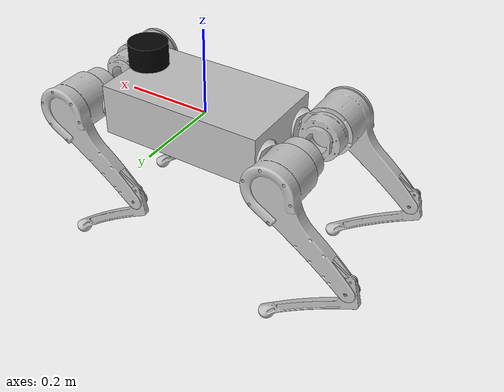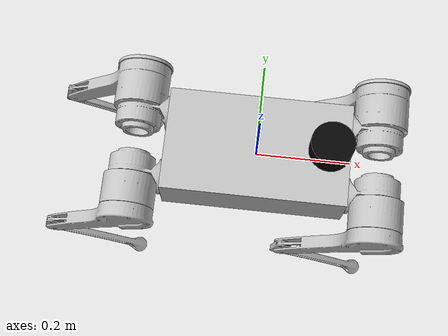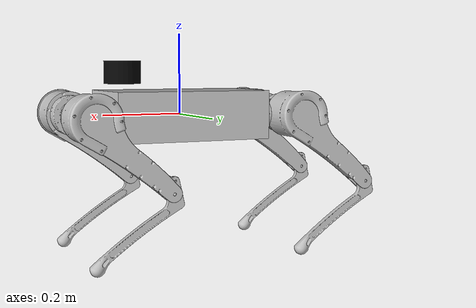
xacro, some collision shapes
<?xml version="1.0" encoding="utf-8"?>
<robot name="ask_3" xmlns:xacro="http://www.ros.org/wiki/xacro">
  <xacro:include filename="$(find ask_3_description)/urdf/ask_3.gazebo" />

  <link
    name="base">
    <inertial>
      <origin
        xyz="0.014593 0.00028184 -0.00016073"
        rpy="0 0 0" />
      <mass
        value="9.6967" />
      <inertia
        ixx="0.027851"
        ixy="0.00062733"
        ixz="-7.4684E-05"
        iyy="0.0296"
        iyz="-0.00011078"
        izz="0.048661" />
    </inertial>
    <visual>
      <origin
        xyz="0 0 0"
        rpy="0 0 0" />
      <geometry>
        <mesh
          filename="package://ask_3_description/meshes/base.STL" />
      </geometry>
      <material
        name="">
        <color
          rgba="0.75294 0.75294 0.75294 1" />
      </material>
    </visual>
    <collision>
      <origin
        xyz="0 0 0"
        rpy="0 0 0" />
      <geometry>
        <box size="0.39 0.22 0.12"/>
      </geometry>
    </collision>
  </link>

  <link name="laser">
    <inertial>
      <origin xyz="0 0 0" rpy="0 0 0" />
      <mass value="0.12" />
      <inertia ixx="0.00008" ixy="0" ixz="0"
               iyy="0.00008" iyz="0" izz="0.00008" />
    </inertial>
    <visual>
      <origin xyz="0 0 0" rpy="0 0 0" />
      <geometry>
        <cylinder length="0.055" radius="0.045" />
      </geometry>
      <material name="laser_black">
        <color rgba="0.02 0.02 0.02 1" />
      </material>
    </visual>
    <collision>
      <origin xyz="0 0 0" rpy="0 0 0" />
      <geometry>
        <cylinder length="0.055" radius="0.045" />
      </geometry>
    </collision>
  </link>

  <joint name="laser_joint" type="fixed">
    <origin xyz="0.15 0 0.105" rpy="0 0 0" />
    <parent link="base" />
    <child link="laser" />
  </joint>

  <gazebo reference="laser">
    <material>Gazebo/Black</material>
    <sensor type="ray" name="ask3_lidar">
      <pose>0 0 0 0 0 0</pose>
      <visualize>true</visualize>
      <update_rate>12</update_rate>
      <ray>
        <scan>
          <horizontal>
            <samples>720</samples>
            <resolution>1</resolution>
            <min_angle>-3.1415926</min_angle>
            <max_angle>3.1415926</max_angle>
          </horizontal>
        </scan>
        <range>
          <min>0.12</min>
          <max>6.0</max>
          <resolution>0.01</resolution>
        </range>
        <noise>
          <type>gaussian</type>
          <mean>0.0</mean>
          <stddev>0.01</stddev>
        </noise>
      </ray>
      <plugin name="gazebo_ros_laser_controller" filename="libgazebo_ros_laser.so">
        <topicName>/scan</topicName>
        <frameName>laser</frameName>
      </plugin>
    </sensor>
  </gazebo>

  <link
    name="LF_Link1">
    <inertial>
      <origin
        xyz="0.015742 2.0008E-06 0.05652"
        rpy="0 0 0" />
      <mass
        value="0.84408" />
      <inertia
        ixx="0.0011915"
        ixy="-2.9889E-08"
        ixz="1.8508E-06"
        iyy="0.00074578"
        iyz="5.548E-08"
        izz="0.00064082" />
    </inertial>
    <visual>
      <origin
        xyz="0 0 0"
        rpy="0 0 0" />
      <geometry>
        <mesh
          filename="package://ask_3_description/meshes/LF_Link1.STL" />
      </geometry>
      <material
        name="">
        <color
          rgba="0.75294 0.75294 0.75294 1" />
      </material>
    </visual>
    <collision>
      <origin
        xyz="0.03325 0 0.06"
        rpy="0 1.5708 0" />
      <geometry>
        <cylinder length="0.0665" radius="0.035" />
      </geometry>
    </collision>
  </link>
  <joint
    name="LF_HAA"
    type="revolute">
    <origin
      xyz="0.1965 0.072 0"
      rpy="-1.5708 0 -1.5708" />
    <parent
      link="base" />
    <child
      link="LF_Link1" />
    <axis
      xyz="0 0 1" />
    <limit
      lower="-3.14"
      upper="3.14"
      effort="25.0"
      velocity="1000" />
  </joint>
  <link
    name="LF_Link2">
    <inertial>
      <origin
        xyz="-0.016452 0.016693 0.067293"
        rpy="0 0 0" />
      <mass
        value="1.8166" />
      <inertia
        ixx="0.003278"
        ixy="0.001787"
        ixz="-2.1595E-06"
        iyy="0.0035781"
        iyz="1.8742E-06"
        izz="0.0065662" />
    </inertial>
    <visual>
      <origin
        xyz="0 0 0"
        rpy="0 0 0" />
      <geometry>
        <mesh
          filename="package://ask_3_description/meshes/LF_Link2.STL" />
      </geometry>
      <material
        name="">
        <color
          rgba="0.75294 0.75294 0.75294 1" />
      </material>
    </visual>
    <collision>
      <origin
        xyz="-0.09028 0.0864549 0.0867"
        rpy="0 0 -0.763368889" />
      <geometry>
        <box size="0.28951 0.03402 0.0278"/>
      </geometry>
    </collision>
  </link>
  <joint
    name="LF_HFE"
    type="revolute">
    <origin
      xyz="0.004 0 0.066"
      rpy="0.0 -1.5708 0" />
    <parent
      link="LF_Link1" />
    <child
      link="LF_Link2" />
    <axis
      xyz="0 0 1" />
    <limit
      lower="-3.14"
      upper="3.14"
      effort="25.0"
      velocity="1000" />
  </joint>
  <link
    name="LF_Link3">
    <inertial>
      <origin
        xyz="0.070778 0.071405 -0.0025021"
        rpy="0 0 0" />
      <mass
        value="0.20609" />
      <inertia
        ixx="0.00069042"
        ixy="-0.00080696"
        ixz="1.2982E-08"
        iyy="0.001043"
        iyz="8.2699E-09"
        izz="0.0017245" />
    </inertial>
    <visual>
      <origin
        xyz="0 0 0"
        rpy="0 0 0" />
      <geometry>
        <mesh
          filename="package://ask_3_description/meshes/LF_Link3.STL" />
      </geometry>
      <material
        name="">
        <color
          rgba="0.75294 0.75294 0.75294 1" />
      </material>
    </visual>
    <collision>
      <origin
        xyz="0.090280254 0.079704835 0"
        rpy="0 0 0.722897778" />
      <geometry>
        <box size="0.24086 0.02523 0.013"/>
      </geometry>
    </collision>
  </link>
  <joint
    name="LF_KFE"
    type="revolute">
    <origin
      xyz="-0.18062 0.17285 0.0947"
      rpy="0 0 0" />
    <parent
      link="LF_Link2" />
    <child
      link="LF_Link3" />
    <axis
      xyz="0 0 1" />
    <limit
      lower="-3.14"
      upper="3.14"
      effort="25.0"
      velocity="1000" />
  </joint>
  <link
    name="LH_Link1">
    <inertial>
      <origin
        xyz="0.015742 -2.0009E-06 -0.05652"
        rpy="0 0 0" />
      <mass
        value="0.84408" />
      <inertia
        ixx="0.0011915"
        ixy="2.989E-08"
        ixz="-1.8508E-06"
        iyy="0.00074578"
        iyz="5.548E-08"
        izz="0.00064082" />
    </inertial>
    <visual>
      <origin
        xyz="0 0 0"
        rpy="0 0 0" />
      <geometry>
        <mesh
          filename="package://ask_3_description/meshes/LH_Link1.STL" />
      </geometry>
      <material
        name="">
        <color
          rgba="0.75294 0.75294 0.75294 1" />
      </material>
    </visual>
    <collision>
      <origin
        xyz="0.03325 0 -0.06"
        rpy="0 1.5708 0" />
      <geometry>
        <cylinder length="0.0665" radius="0.035" />
      </geometry>
    </collision>
  </link>
  <joint
    name="LH_HAA"
    type="revolute">
    <origin
      xyz="-0.1965 0.072 0"
      rpy="-1.5708 0 -1.5708" />
    <parent
      link="base" />
    <child
      link="LH_Link1" />
    <axis
      xyz="0 0 1" />
    <limit
      lower="-3.14"
      upper="3.14"
      effort="25.0"
      velocity="1000" />
  </joint>
  <link
    name="LH_Link2">
    <inertial>
      <origin
        xyz="-0.016441 0.016704 0.067293"
        rpy="0 0 0" />
      <mass
        value="1.8166" />
      <inertia
        ixx="0.0032804"
        ixy="0.0017872"
        ixz="-2.1582E-06"
        iyy="0.0035757"
        iyz="1.8756E-06"
        izz="0.0065662" />
    </inertial>
    <visual>
      <origin
        xyz="0 0 0"
        rpy="0 0 0" />
      <geometry>
        <mesh
          filename="package://ask_3_description/meshes/LH_Link2.STL" />
      </geometry>
      <material
        name="">
        <color
          rgba="0.75294 0.75294 0.75294 1" />
      </material>
    </visual>
    <collision>
      <origin
        xyz="-0.09028 0.0864549 0.0867"
        rpy="0 0 -0.763368889" />
      <geometry>
        <box size="0.28951 0.03402 0.0278"/>
      </geometry>
    </collision>
  </link>
  <joint
    name="LH_HFE"
    type="revolute">
    <origin
      xyz="0.004 0 -0.066"
      rpy="0.0 -1.5708 0" />
    <parent
      link="LH_Link1" />
    <child
      link="LH_Link2" />
    <axis
      xyz="0 0 1" />
    <limit
      lower="-3.14"
      upper="3.14"
      effort="25.0"
      velocity="1000" />
  </joint>
  <link
    name="LH_Link3">
    <inertial>
      <origin
        xyz="0.070825 0.071358 -0.0025021"
        rpy="0 0 0" />
      <mass
        value="0.20609" />
      <inertia
        ixx="0.00068935"
        ixy="-0.00080672"
        ixz="1.2987E-08"
        iyy="0.001044"
        iyz="8.261E-09"
        izz="0.0017245" />
    </inertial>
    <visual>
      <origin
        xyz="0 0 0"
        rpy="0 0 0" />
      <geometry>
        <mesh
          filename="package://ask_3_description/meshes/LH_Link3.STL" />
      </geometry>
      <material
        name="">
        <color
          rgba="0.75294 0.75294 0.75294 1" />
      </material>
    </visual>
    <collision>
      <origin
        xyz="0.090280254 0.079704835 0"
        rpy="0 0 0.722897778" />
      <geometry>
        <box size="0.24086 0.02523 0.013"/>
      </geometry>
    </collision>
  </link>
  <joint
    name="LH_KFE"
    type="revolute">
    <origin
      xyz="-0.18051 0.17297 0.0947"
      rpy="0 0 0" />
    <parent
      link="LH_Link2" />
    <child
      link="LH_Link3" />
    <axis
      xyz="0 0 1" />
    <limit
      lower="-3.14"
      upper="3.14"
      effort="25.0"
      velocity="1000" />
  </joint>
  <link
    name="RF_Link1">
    <inertial>
      <origin
        xyz="-0.015742 -2.0009E-06 0.05652"
        rpy="0 0 0" />
      <mass
        value="0.84408" />
      <inertia
        ixx="0.0011915"
        ixy="-2.989E-08"
        ixz="-1.8508E-06"
        iyy="0.00074578"
        iyz="-5.548E-08"
        izz="0.00064082" />
    </inertial>
    <visual>
      <origin
        xyz="0 0 0"
        rpy="0 0 0" />
      <geometry>
        <mesh
          filename="package://ask_3_description/meshes/RF_Link1.STL" />
      </geometry>
      <material
        name="">
        <color
          rgba="0.75294 0.75294 0.75294 1" />
      </material>
    </visual>
    <collision>
      <origin
        xyz="-0.03325 0 0.06"
        rpy="0 1.5708 0" />
      <geometry>
        <cylinder length="0.0665" radius="0.035" />
      </geometry>
    </collision>
  </link>
  <joint
    name="RF_HAA"
    type="revolute">
    <origin
      xyz="0.1965 -0.072 0"
      rpy="-1.5708 0 -1.5708" />
    <parent
      link="base" />
    <child
      link="RF_Link1" />
    <axis
      xyz="0 0 1" />
    <limit
      lower="-3.14"
      upper="3.14"
      effort="25.0"
      velocity="1000" />
  </joint>
  <link
    name="RF_Link2">
    <inertial>
      <origin
        xyz="-0.01645 0.016695 -0.067293"
        rpy="0 0 0" />
      <mass
        value="1.8166" />
      <inertia
        ixx="0.0032782"
        ixy="0.001787"
        ixz="2.082E-06"
        iyy="0.0035779"
        iyz="-1.9593E-06"
        izz="0.0065662" />
    </inertial>
    <visual>
      <origin
        xyz="0 0 0"
        rpy="0 0 0" />
      <geometry>
        <mesh
          filename="package://ask_3_description/meshes/RF_Link2.STL" />
      </geometry>
      <material
        name="">
        <color
          rgba="0.75294 0.75294 0.75294 1" />
      </material>
    </visual>
    <collision>
      <origin
        xyz="-0.09028 0.0864549 -0.0867"
        rpy="0 0 -0.763368889" />
      <geometry>
        <box size="0.28951 0.03402 0.0278"/>
      </geometry>
    </collision>
  </link>
  <joint
    name="RF_HFE"
    type="revolute">
    <origin
      xyz="-0.004 0 0.066"
      rpy="0.0 -1.5708 0" />
    <parent
      link="RF_Link1" />
    <child
      link="RF_Link2" />
    <axis
      xyz="0 0 1" />
    <limit
      lower="-3.14"
      upper="3.14"
      effort="25.0"
      velocity="1000" />
  </joint>
  <link
    name="RF_Link3">
    <inertial>
      <origin
        xyz="0.070778 0.071405 -0.0025021"
        rpy="0 0 0" />
      <mass
        value="0.20609" />
      <inertia
        ixx="0.00069042"
        ixy="-0.00080696"
        ixz="1.2982E-08"
        iyy="0.001043"
        iyz="8.2699E-09"
        izz="0.0017245" />
    </inertial>
    <visual>
      <origin
        xyz="0 0 0"
        rpy="0 0 0" />
      <geometry>
        <mesh
          filename="package://ask_3_description/meshes/RF_Link3.STL" />
      </geometry>
      <material
        name="">
        <color
          rgba="0.75294 0.75294 0.75294 1" />
      </material>
    </visual>
    <collision>
      <origin
        xyz="0.090280254 0.079704835 0"
        rpy="0 0 0.722897778" />
      <geometry>
        <box size="0.24086 0.02523 0.013"/>
      </geometry>
    </collision>
  </link>
  <joint
    name="RF_KFE"
    type="revolute">
    <origin
      xyz="-0.18062 0.17285 -0.0897"
      rpy="0 0 0" />
    <parent
      link="RF_Link2" />
    <child
      link="RF_Link3" />
    <axis
      xyz="0 0 1" />
    <limit
      lower="-3.14"
      upper="3.14"
      effort="25.0"
      velocity="1000" />
  </joint>
  <link
    name="RH_Link1">
    <inertial>
      <origin
        xyz="-0.015742 2.0009E-06 -0.05652"
        rpy="0 0 0" />
      <mass
        value="0.84408" />
      <inertia
        ixx="0.0011915"
        ixy="2.989E-08"
        ixz="1.8508E-06"
        iyy="0.00074578"
        iyz="-5.548E-08"
        izz="0.00064082" />
    </inertial>
    <visual>
      <origin
        xyz="0 0 0"
        rpy="0 0 0" />
      <geometry>
        <mesh
          filename="package://ask_3_description/meshes/RH_Link1.STL" />
      </geometry>
      <material
        name="">
        <color
          rgba="0.75294 0.75294 0.75294 1" />
      </material>
    </visual>
    <collision>
      <origin
        xyz="-0.03325 0 -0.06"
        rpy="0 1.5708 0" />
      <geometry>
        <cylinder length="0.0665" radius="0.035" />
      </geometry>
    </collision>
  </link>
  <joint
    name="RH_HAA"
    type="revolute">
    <origin
      xyz="-0.1965 -0.072 0"
      rpy="-1.5708 0 -1.5708" />
    <parent
      link="base" />
    <child
      link="RH_Link1" />
    <axis
      xyz="0 0 1" />
    <limit
      lower="-3.14"
      upper="3.14"
      effort="25.0"
      velocity="1000" />
  </joint>
  <link
    name="RH_Link2">
    <inertial>
      <origin
        xyz="-0.016439 0.016706 -0.067293"
        rpy="0 0 0" />
      <mass
        value="1.8166" />
      <inertia
        ixx="0.0032805"
        ixy="0.0017872"
        ixz="2.0807E-06"
        iyy="0.0035756"
        iyz="-1.9607E-06"
        izz="0.0065662" />
    </inertial>
    <visual>
      <origin
        xyz="0 0 0"
        rpy="0 0 0" />
      <geometry>
        <mesh
          filename="package://ask_3_description/meshes/RH_Link2.STL" />
      </geometry>
      <material
        name="">
        <color
          rgba="0.75294 0.75294 0.75294 1" />
      </material>
    </visual>
    <collision>
      <origin
        xyz="-0.09028 0.0864549 -0.0867"
        rpy="0 0 -0.763368889" />
      <geometry>
        <box size="0.28951 0.03402 0.0278"/>
      </geometry>
    </collision>
  </link>
  <joint
    name="RH_HFE"
    type="revolute">
    <origin
      xyz="-0.004 0 -0.066"
      rpy="0.0 -1.5708 0" />
    <parent
      link="RH_Link1" />
    <child
      link="RH_Link2" />
    <axis
      xyz="0 0 1" />
    <limit
      lower="-3.14"
      upper="3.14"
      effort="25.0"
      velocity="1000" />
  </joint>
  <link
    name="RH_Link3">
    <inertial>
      <origin
        xyz="0.070825 0.071358 -0.0025021"
        rpy="0 0 0" />
      <mass
        value="0.20609" />
      <inertia
        ixx="0.00068935"
        ixy="-0.00080672"
        ixz="1.2987E-08"
        iyy="0.001044"
        iyz="8.261E-09"
        izz="0.0017245" />
    </inertial>
    <visual>
      <origin
        xyz="0 0 0"
        rpy="0 0 0" />
      <geometry>
        <mesh
          filename="package://ask_3_description/meshes/RH_Link3.STL" />
      </geometry>
      <material
        name="">
        <color
          rgba="0.75294 0.75294 0.75294 1" />
      </material>
    </visual>
    <collision>
      <origin
        xyz="0.090280254 0.079704835 0"
        rpy="0 0 0.722897778" />
      <geometry>
        <box size="0.24086 0.02523 0.013"/>
      </geometry>
    </collision>
  </link>
  <joint
    name="RH_KFE"
    type="revolute">
    <origin
      xyz="-0.18051 0.17297 -0.0897"
      rpy="0 0 0" />
    <parent
      link="RH_Link2" />
    <child
      link="RH_Link3" />
    <axis
      xyz="0 0 1" />
    <limit
      lower="-3.14"
      upper="3.14"
      effort="25.0"
      velocity="1000" />
  </joint>

  <link name="LF_foot">
    <collision>
      <origin rpy="0 0 0" xyz="0 0 0"/>
      <geometry>
        <sphere radius="0.02"/>
      </geometry>
    </collision>
  </link>
  <joint name="LF_ankle" type="fixed" dont_collapse="true">
    <parent link="LF_Link3"/>
    <child link="LF_foot"/>
    <origin rpy="0 0 0" xyz="0.18051 0.15934 -0.0025"/>
  </joint>

  <link name="LH_foot">
    <collision>
      <origin rpy="0 0 0" xyz="0 0 0"/>
      <geometry>
        <sphere radius="0.02"/>
      </geometry>
    </collision>
  </link>
  <joint name="LH_ankle" type="fixed" dont_collapse="true">
    <parent link="LH_Link3"/>
    <child link="LH_foot"/>
    <origin rpy="0 0 0" xyz="0.18051 0.15934 -0.0025"/>
  </joint>

  <link name="RF_foot">
    <collision>
      <origin rpy="0 0 0" xyz="0 0 0"/>
      <geometry>
        <sphere radius="0.02"/>
      </geometry>
    </collision>
  </link>
  <joint name="RF_ankle" type="fixed" dont_collapse="true">
    <parent link="RF_Link3"/>
    <child link="RF_foot"/>
    <origin rpy="0 0 0" xyz="0.18051 0.15934 -0.0025"/>
  </joint>

   <link name="RH_foot">
    <collision>
      <origin rpy="0 0 0" xyz="0 0 0"/>
      <geometry>
        <sphere radius="0.02"/>
      </geometry>
    </collision>
  </link>
  <joint name="RH_ankle" type="fixed" dont_collapse="true">
    <parent link="RH_Link3"/>
    <child link="RH_foot"/>
    <origin rpy="0 0 0" xyz="0.18051 0.15934 -0.0025"/>
  </joint>

  <!-- Gazebo customization -->
  <gazebo reference="RF_foot">
    <kp>1000000.0</kp>
    <kd>100.0</kd>
    <mu1>0.8</mu1>
    <mu2>0.8</mu2>
  </gazebo>

  <gazebo reference="LF_foot">
    <kp>1000000.0</kp>
    <kd>100.0</kd>
    <mu1>0.8</mu1>
    <mu2>0.8</mu2>
  </gazebo>

  <gazebo reference="RH_foot">
    <kp>1000000.0</kp>
    <kd>100.0</kd>
    <mu1>0.8</mu1>
    <mu2>0.8</mu2>
  </gazebo>

  <gazebo reference="LH_foot">
    <kp>1000000.0</kp>
    <kd>100.0</kd>
    <mu1>0.8</mu1>
    <mu2>0.8</mu2>
  </gazebo>
</robot>
